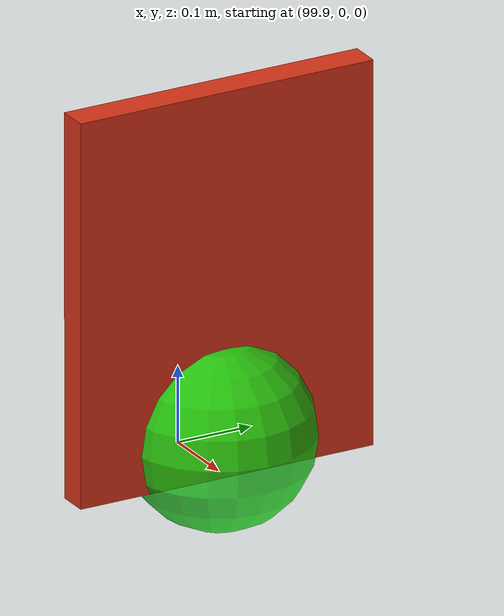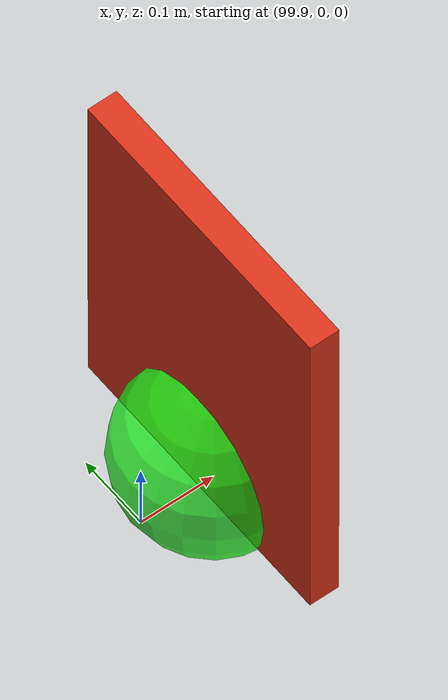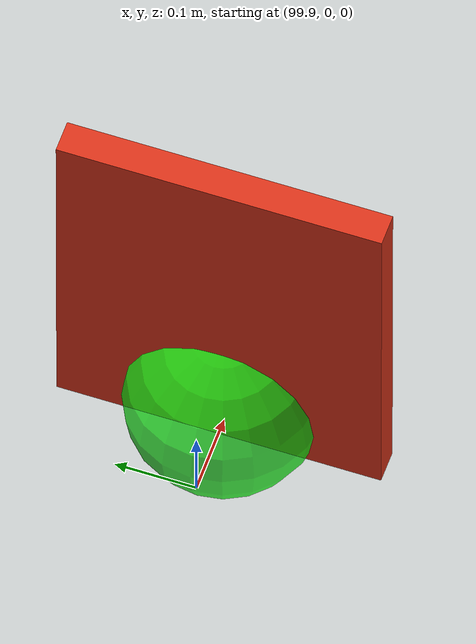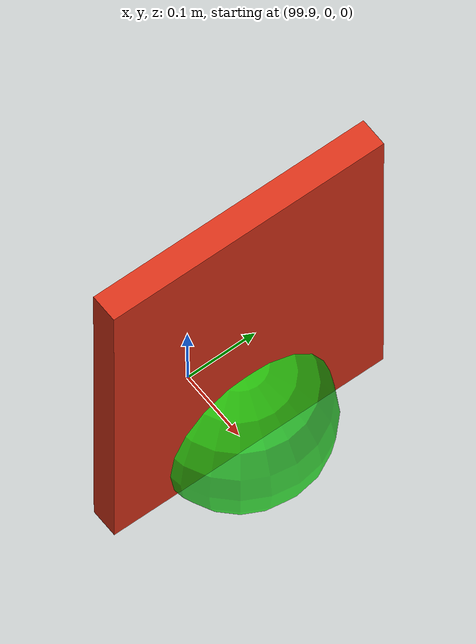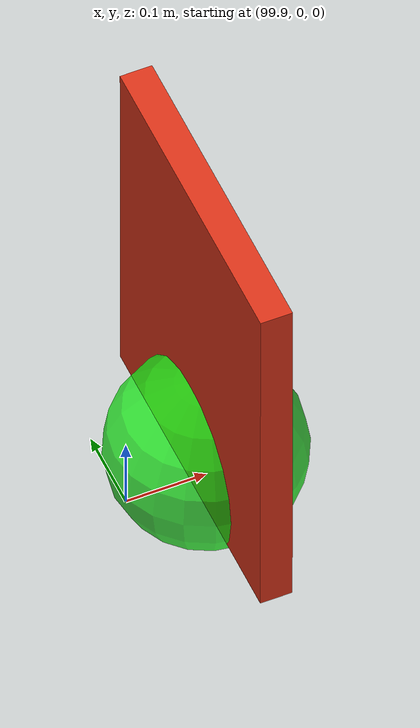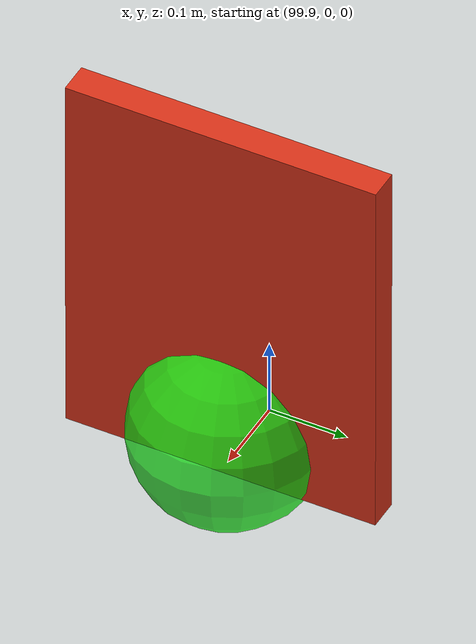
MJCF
<?xml version="1.0" encoding="utf-8"?>

<mujoco model="dog">

  <!-- ═══════════════════════════════════════
       OPZIONI SIMULAZIONE
  ═══════════════════════════════════════ -->
  <option gravity="0 0 -9.81"
          timestep="0.002"
          integrator="RK4"/>

  <compiler angle="radian"
            meshdir="meshes/"
            autolimits="true"/>

  <visual>
    <global offwidth="1920" offheight="1080"/>
    <quality shadowsize="8192"/>
    <map shadowscale="0.6" shadowclip="2" znear="0.001"/>
  </visual>

  <!-- ═══════════════════════════════════════
       PARAMETRI DI CONTATTO GLOBALI
  ═══════════════════════════════════════ -->
  <default>
    <joint damping="0.5" armature="0.01"/>
    <geom condim="3" friction="0.8 0.02 0.001"/>
    <motor ctrlrange="-20 20" ctrllimited="true"/>
  </default>

  <!-- ═══════════════════════════════════════
       ASSET: MESH + TEXTURE + MATERIALI
  ═══════════════════════════════════════ -->
  <asset>

    <!-- Skybox -->
    <texture name="skybox" type="skybox" builtin="gradient"
             rgb1="0.5 0.7 0.9" rgb2="0.1 0.1 0.2"
             width="512" height="512"/>

    <!-- Texture pavimento -->
    <texture name="grid" type="2d" builtin="checker"
             rgb1="0.85 0.85 0.85" rgb2="0.65 0.65 0.65"
             width="512" height="512" mark="none"/>
    <material name="floor_mat" texture="grid"
              texrepeat="6 6" reflectance="0.15"/>

    <!-- Materiali robot -->
    <material name="body_mat"  rgba="0.15 0.15 0.15 1"
              reflectance="0.3" shininess="0.4"/>
    <material name="leg_mat"   rgba="0.9 0.5 0.1 1"
              reflectance="0.2" shininess="0.3"/>
    <material name="foot_mat"  rgba="0.2 0.2 0.2 0"
              reflectance="0.1"/>

    <!-- Mesh STL da FreeCAD (mm → metri, scala 0.001) -->
    <mesh name="trunk"     file="trunk.stl"     scale="0.001 0.001 0.001"/>
    <mesh name="upper_leg" file="upper_leg.stl" scale="0.001 0.001 0.001"/>
    <mesh name="lower_leg" file="lower_leg.stl" scale="0.001 0.001 0.001"/>

  </asset>

  <!-- ═══════════════════════════════════════
       SCENA E ROBOT
  ═══════════════════════════════════════ -->
  <worldbody>

    <!-- Luci -->
    <light name="sun"  pos="1 1 4"   dir="-0.2 -0.2 -1"
           diffuse="0.9 0.9 0.9" specular="0.4 0.4 0.4"
           castshadow="true"/>
    <light name="fill" pos="-2 -2 2" dir="0.4 0.4 -1"
           diffuse="0.3 0.3 0.35" castshadow="false"/>

    <!-- Pavimento -->
    <geom name="floor" type="plane" size="10 10 0.1"
          material="floor_mat" condim="3"/>

    <!-- Obstacles — mocap bodies moved each episode via mocap_pos -->
    <body name="obs0" mocap="true" pos="100 0 0.25">
      <geom type="box" size="0.02 0.20 0.25" rgba="0.85 0.2 0.1 1" condim="3"/>
    </body>
    <body name="obs1" mocap="true" pos="100 0 0.25">
      <geom type="box" size="0.02 0.20 0.25" rgba="0.85 0.2 0.1 1" condim="3"/>
    </body>
    <body name="obs2" mocap="true" pos="100 0 0.25">
      <geom type="box" size="0.02 0.20 0.25" rgba="0.85 0.2 0.1 1" condim="3"/>
    </body>
    <body name="obs3" mocap="true" pos="100 0 0.25">
      <geom type="box" size="0.02 0.20 0.25" rgba="0.85 0.2 0.1 1" condim="3"/>
    </body>
    <body name="obs4" mocap="true" pos="100 0 0.25">
      <geom type="box" size="0.02 0.20 0.25" rgba="0.85 0.2 0.1 1" condim="3"/>
    </body>
    <body name="obs5" mocap="true" pos="100 0 0.25">
      <geom type="box" size="0.02 0.20 0.25" rgba="0.85 0.2 0.1 1" condim="3"/>
    </body>
    <body name="obs6" mocap="true" pos="100 0 0.25">
      <geom type="box" size="0.02 0.20 0.25" rgba="0.85 0.2 0.1 1" condim="3"/>
    </body>
    <body name="obs7" mocap="true" pos="100 0 0.25">
      <geom type="box" size="0.02 0.20 0.25" rgba="0.85 0.2 0.1 1" condim="3"/>
    </body>
    <body name="obs8" mocap="true" pos="100 0 0.25">
      <geom type="box" size="0.02 0.20 0.25" rgba="0.85 0.2 0.1 1" condim="3"/>
    </body>
    <body name="obs9" mocap="true" pos="100 0 0.25">
      <geom type="box" size="0.02 0.20 0.25" rgba="0.85 0.2 0.1 1" condim="3"/>
    </body>
    <body name="obs10" mocap="true" pos="100 0 0.25">
      <geom type="box" size="0.02 0.20 0.25" rgba="0.85 0.2 0.1 1" condim="3"/>
    </body>
    <body name="obs11" mocap="true" pos="100 0 0.25">
      <geom type="box" size="0.02 0.20 0.25" rgba="0.85 0.2 0.1 1" condim="3"/>
    </body>
    <body name="obs12" mocap="true" pos="100 0 0.25">
      <geom type="box" size="0.02 0.20 0.25" rgba="0.85 0.2 0.1 1" condim="3"/>
    </body>
    <body name="obs13" mocap="true" pos="100 0 0.25">
      <geom type="box" size="0.02 0.20 0.25" rgba="0.85 0.2 0.1 1" condim="3"/>
    </body>
    <body name="obs14" mocap="true" pos="100 0 0.25">
      <geom type="box" size="0.02 0.20 0.25" rgba="0.85 0.2 0.1 1" condim="3"/>
    </body>
    <body name="obs15" mocap="true" pos="100 0 0.25">
      <geom type="box" size="0.02 0.20 0.25" rgba="0.85 0.2 0.1 1" condim="3"/>
    </body>
    <body name="obs16" mocap="true" pos="100 0 0.25">
      <geom type="box" size="0.02 0.20 0.25" rgba="0.85 0.2 0.1 1" condim="3"/>
    </body>
    <body name="obs17" mocap="true" pos="100 0 0.25">
      <geom type="box" size="0.02 0.20 0.25" rgba="0.85 0.2 0.1 1" condim="3"/>
    </body>
    <body name="obs18" mocap="true" pos="100 0 0.25">
      <geom type="box" size="0.02 0.20 0.25" rgba="0.85 0.2 0.1 1" condim="3"/>
    </body>
    <body name="obs19" mocap="true" pos="100 0 0.25">
      <geom type="box" size="0.02 0.20 0.25" rgba="0.85 0.2 0.1 1" condim="3"/>
    </body>
    <body name="obs20" mocap="true" pos="100 0 0.25">
      <geom type="box" size="0.02 0.20 0.25" rgba="0.85 0.2 0.1 1" condim="3"/>
    </body>
    <body name="obs21" mocap="true" pos="100 0 0.25">
      <geom type="box" size="0.02 0.20 0.25" rgba="0.85 0.2 0.1 1" condim="3"/>
    </body>
    <body name="obs22" mocap="true" pos="100 0 0.25">
      <geom type="box" size="0.02 0.20 0.25" rgba="0.85 0.2 0.1 1" condim="3"/>
    </body>
    <body name="obs23" mocap="true" pos="100 0 0.25">
      <geom type="box" size="0.02 0.20 0.25" rgba="0.85 0.2 0.1 1" condim="3"/>
    </body>
    <body name="obs24" mocap="true" pos="100 0 0.25">
      <geom type="box" size="0.02 0.20 0.25" rgba="0.85 0.2 0.1 1" condim="3"/>
    </body>
    <body name="obs25" mocap="true" pos="100 0 0.25">
      <geom type="box" size="0.02 0.20 0.25" rgba="0.85 0.2 0.1 1" condim="3"/>
    </body>
    <body name="obs26" mocap="true" pos="100 0 0.25">
      <geom type="box" size="0.02 0.20 0.25" rgba="0.85 0.2 0.1 1" condim="3"/>
    </body>
    <body name="obs27" mocap="true" pos="100 0 0.25">
      <geom type="box" size="0.02 0.20 0.25" rgba="0.85 0.2 0.1 1" condim="3"/>
    </body>
    <body name="obs28" mocap="true" pos="100 0 0.25">
      <geom type="box" size="0.02 0.20 0.25" rgba="0.85 0.2 0.1 1" condim="3"/>
    </body>
    <body name="obs29" mocap="true" pos="100 0 0.25">
      <geom type="box" size="0.02 0.20 0.25" rgba="0.85 0.2 0.1 1" condim="3"/>
    </body>

    <!-- Goal marker (green sphere) -->
    <body name="goal_marker" mocap="true" pos="100 0 0.05">
      <geom type="sphere" size="0.12" rgba="0.1 0.95 0.1 0.8" condim="1"/>
    </body>

    <!-- ──────────────────────────────────
         CAMERE
         trunk è a z=0.13 → il robot è alto circa 12cm da terra
    ────────────────────────────────── -->
    <camera name="side_cam"
            pos="0.6 -0.6 0.25"
            xyaxes="0.7 0.7 0 -0.15 0.15 1"/>
    <camera name="follow_cam"
            pos="0 -0.5 0.3"
            xyaxes="1 0 0 0 0.4 1"
            mode="trackcom"/>
    <camera name="front_cam"
            pos="-0.5 0 0.2"
            xyaxes="0 -1 0 0.2 0 1"/>
    <camera name="top_cam"
            pos="0 0 0.7"
            xyaxes="1 0 0 0 1 0"/>

    <body name="trunk" pos="0 0 0.10">

      <!-- Giunto libero: il robot può muoversi nello spazio -->
      <freejoint name="floating_base"/>

      <!-- Geometria visiva (mesh STL) -->
      <geom name="trunk_visual"
            type="mesh" mesh="trunk"
            material="body_mat"/>

      <!-- Geometria collisione (box approssimata)
           14cm x 11cm x 2cm = 0.14 x 0.11 x 0.02 -->
      <geom name="trunk_col"
            type="box"
            size="0.07 0.055 0.01"
            rgba="0.15 0.15 0.15 0.0"/>

      <!-- IMU site (per sensori) -->
      <site name="imu" pos="0 0 0" size="0.01"/>

      <!-- ══════════════════════════
           ZAMPA FRONT LEFT (FL)
           Hip: x=+0.06, y=+0.055
      ══════════════════════════ -->
      <body name="FL_upper_leg" pos="0.055 0.055 0">
        <joint name="FL_hip" type="hinge"
               axis="0 1 0"
               range="-0.398 0.998"
               damping="0.5"/>
        <geom type="mesh" mesh="upper_leg" material="leg_mat"/>
        <geom type="capsule" size="0.012" fromto="0 0 0  0 0 -0.03"
              group="3" rgba="0.9 0.5 0.1 0.0"/>

        <body name="FL_lower_leg" pos="0 0.008 -0.03">
          <joint name="FL_knee" type="hinge"
                 axis="0 1 0"
                 range="-1.498 -0.102"
                 damping="0.5"/>
          <geom type="mesh" mesh="lower_leg" material="leg_mat"/>
          <geom type="capsule" size="0.010" fromto="0 0 0  0 0 -0.04"
                group="3" rgba="0.9 0.5 0.1 0.0"/>
          <site name="FL_foot_site" pos="0 0 -0.042" size="0.005"/>
        </body>
      </body>

      <!-- ══════════════════════════
           ZAMPA FRONT RIGHT (FR)
           Hip: x=+0.06, y=-0.055
      ══════════════════════════ -->
      <body name="FR_upper_leg" pos="0.055 -0.055 0">
        <joint name="FR_hip" type="hinge"
               axis="0 1 0"
               range="-0.398 0.998"
               damping="0.5"/>
        <geom type="mesh" mesh="upper_leg" material="leg_mat"/>
        <geom type="capsule" size="0.012" fromto="0 0 0  0 0 -0.03"
              group="3" rgba="0.9 0.5 0.1 0.0"/>

        <body name="FR_lower_leg" pos="0 -0.008 -0.03">
          <joint name="FR_knee" type="hinge"
                 axis="0 1 0"
                 range="-1.498 -0.102"
                 damping="0.5"/>
          <geom type="mesh" mesh="lower_leg" material="leg_mat"/>
          <geom type="capsule" size="0.010" fromto="0 0 0  0 0 -0.04"
                group="3" rgba="0.9 0.5 0.1 0.0"/>
          <site name="FR_foot_site" pos="0 0 -0.042" size="0.005"/>
        </body>
      </body>

      <!-- ══════════════════════════
           ZAMPA REAR LEFT (RL)
           Hip: x=-0.06, y=+0.055
      ══════════════════════════ -->
      <body name="RL_upper_leg" pos="-0.055 0.055 0">
        <joint name="RL_hip" type="hinge"
               axis="0 1 0"
               range="-0.398 0.998"
               damping="0.5"/>
        <geom type="mesh" mesh="upper_leg" material="leg_mat"/>
        <geom type="capsule" size="0.012" fromto="0 0 0  0 0 -0.03"
              group="3" rgba="0.9 0.5 0.1 0.0"/>

        <body name="RL_lower_leg" pos="0 0.008 -0.03">
          <joint name="RL_knee" type="hinge"
                 axis="0 1 0"
                 range="-1.498 -0.102"
                 damping="0.5"/>
          <geom type="mesh" mesh="lower_leg" material="leg_mat"/>
          <geom type="capsule" size="0.010" fromto="0 0 0  0 0 -0.04"
                group="3" rgba="0.9 0.5 0.1 0.0"/>
          <site name="RL_foot_site" pos="0 0 -0.042" size="0.005"/>
        </body>
      </body>

      <!-- ══════════════════════════
           ZAMPA REAR RIGHT (RR)
           Hip: x=-0.06, y=-0.055
      ══════════════════════════ -->
      <body name="RR_upper_leg" pos="-0.055 -0.055 0">
        <joint name="RR_hip" type="hinge"
               axis="0 1 0"
               range="-0.398 0.998"
               damping="0.5"/>
        <geom type="mesh" mesh="upper_leg" material="leg_mat"/>
        <geom type="capsule" size="0.012" fromto="0 0 0  0 0 -0.03"
              group="3" rgba="0.9 0.5 0.1 0.0"/>

        <body name="RR_lower_leg" pos="0 -0.008 -0.03">
          <joint name="RR_knee" type="hinge"
                 axis="0 1 0"
                 range="-1.498 -0.102"
                 damping="0.5"/>
          <geom type="mesh" mesh="lower_leg" material="leg_mat"/>
          <geom type="capsule" size="0.010" fromto="0 0 0  0 0 -0.04"
                group="3" rgba="0.9 0.5 0.1 0.0"/>
          <site name="RR_foot_site" pos="0 0 -0.042" size="0.005"/>
        </body>
      </body>

    </body><!-- fine trunk -->
  </worldbody>

  <actuator>
    <position name="FL_hip_act"  joint="FL_hip"  kp="60" ctrlrange="-0.398  0.998"/>
    <position name="FL_knee_act" joint="FL_knee" kp="60" ctrlrange="-1.498 -0.102"/>
    <position name="FR_hip_act"  joint="FR_hip"  kp="60" ctrlrange="-0.398  0.998"/>
    <position name="FR_knee_act" joint="FR_knee" kp="60" ctrlrange="-1.498 -0.102"/>
    <position name="RL_hip_act"  joint="RL_hip"  kp="60" ctrlrange="-0.398  0.998"/>
    <position name="RL_knee_act" joint="RL_knee" kp="60" ctrlrange="-1.498 -0.102"/>
    <position name="RR_hip_act"  joint="RR_hip"  kp="60" ctrlrange="-0.398  0.998"/>
    <position name="RR_knee_act" joint="RR_knee" kp="60" ctrlrange="-1.498 -0.102"/>
  </actuator>

  <!-- ═══════════════════════════════════════
       SENSORI
  ═══════════════════════════════════════ -->
  <sensor>
    <!-- IMU sul corpo -->
    <gyro         name="imu_gyro" site="imu"/>
    <accelerometer name="imu_acc" site="imu"/>

    <!-- Posizione e velocità joint -->
    <jointpos name="FL_hip_pos"  joint="FL_hip"/>
    <jointpos name="FL_knee_pos" joint="FL_knee"/>
    <jointpos name="FR_hip_pos"  joint="FR_hip"/>
    <jointpos name="FR_knee_pos" joint="FR_knee"/>
    <jointpos name="RL_hip_pos"  joint="RL_hip"/>
    <jointpos name="RL_knee_pos" joint="RL_knee"/>
    <jointpos name="RR_hip_pos"  joint="RR_hip"/>
    <jointpos name="RR_knee_pos" joint="RR_knee"/>

    <jointvel name="FL_hip_vel"  joint="FL_hip"/>
    <jointvel name="FL_knee_vel" joint="FL_knee"/>
    <jointvel name="FR_hip_vel"  joint="FR_hip"/>
    <jointvel name="FR_knee_vel" joint="FR_knee"/>
    <jointvel name="RL_hip_vel"  joint="RL_hip"/>
    <jointvel name="RL_knee_vel" joint="RL_knee"/>
    <jointvel name="RR_hip_vel"  joint="RR_hip"/>
    <jointvel name="RR_knee_vel" joint="RR_knee"/>

    <!-- Forze ai piedi (contatto) -->
    <touch name="FL_touch" site="FL_foot_site"/>
    <touch name="FR_touch" site="FR_foot_site"/>
    <touch name="RL_touch" site="RL_foot_site"/>
    <touch name="RR_touch" site="RR_foot_site"/>
  </sensor>

</mujoco>
